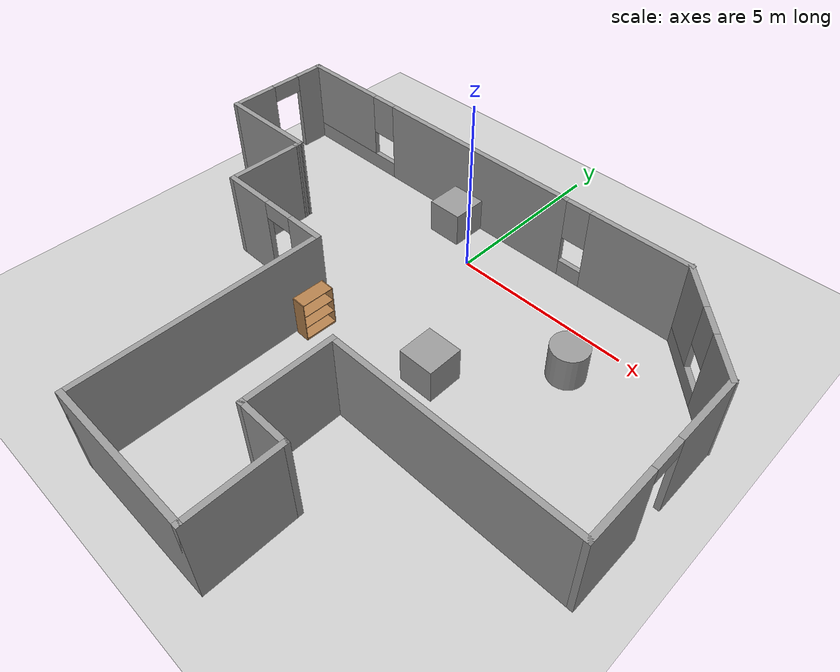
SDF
<sdf version="1.7">
 <world name="default">
  <light name="sun" type="directional">
   <pose>0 0 10 0 -0 0</pose>
   <diffuse>0.8 0.8 0.8 1</diffuse>
   <specular>0.2 0.2 0.2 1</specular>
   <attenuation>
    <range>1000</range>
    <constant>0.9</constant>
    <linear>0.01</linear>
    <quadratic>0.001</quadratic>
   </attenuation>
   <direction>-0.5 0.1 -0.9</direction>
   <spot><inner_angle>0</inner_angle><outer_angle>0</outer_angle><falloff>0</falloff></spot>
  </light>
  <model name="ground_plane">
   <static>1</static>
   <link name="link">
    <collision name="collision">
     <geometry><plane><normal>0 0 1</normal><size>100 100</size></plane></geometry>
     <surface><friction><ode><mu>100</mu><mu2>50</mu2></ode></friction></surface>
    </collision>
    <visual name="visual">
     <cast_shadows>0</cast_shadows>
     <geometry><plane><normal>0 0 1</normal><size>100 100</size></plane></geometry>
     <material>
      <script><uri>file://media/materials/scripts/gazebo.material</uri><name>Gazebo/Grey</name></script>
     </material>
    </visual>
   </link>
  </model>
  <gravity>0 0 -9.8</gravity>
  <magnetic_field>6e-06 2.3e-05 -4.2e-05</magnetic_field>
  <atmosphere type="adiabatic"/>
  <physics type="ode">
   <max_step_size>0.001</max_step_size>
   <real_time_factor>1</real_time_factor>
   <real_time_update_rate>1000</real_time_update_rate>
  </physics>
  <scene><ambient>0.4 0.4 0.4 1</ambient><background>0.7 0.7 0.7 1</background><shadows>1</shadows></scene>
  <audio><device>default</device></audio>
  <spherical_coordinates>
   <surface_model>EARTH_WGS84</surface_model>
   <latitude_deg>0</latitude_deg>
   <longitude_deg>0</longitude_deg>
   <elevation>0</elevation>
   <heading_deg>0</heading_deg>
  </spherical_coordinates>
  <model name="TestRoom">
   <pose>0.121129 -4.48506 0 0 -0 0</pose>
   <link name="Wall_0">
    <collision name="Wall_0_Collision">
     <geometry><box><size>2.25 0.15 2.5</size></box></geometry>
     <pose>0 0 1.25 0 -0 0</pose>
    </collision>
    <visual name="Wall_0_Visual">
     <pose>0 0 1.25 0 -0 0</pose>
     <geometry><box><size>2.25 0.15 2.5</size></box></geometry>
     <material>
      <script><uri>file://media/materials/scripts/gazebo.material</uri><name>Gazebo/Grey</name></script>
      <ambient>1 1 1 1</ambient>
     </material>
     <meta><layer>0</layer></meta>
    </visual>
    <pose>-4.93113 1.67506 0 0 -0 -1.5708</pose>
   </link>
   <link name="Wall_1">
    <pose>-3.25613 0.625063 0 0 -0 0</pose>
    <visual name="Wall_1_Visual_0">
     <pose>-1.00064 0 1.25 0 -0 0</pose>
     <geometry><box><size>1.49872 0.15 2.5</size></box></geometry>
     <material>
      <script><uri>file://media/materials/scripts/gazebo.material</uri><name>Gazebo/Grey</name></script>
      <ambient>1 1 1 1</ambient>
     </material>
     <meta><layer>0</layer></meta>
    </visual>
    <collision name="Wall_1_Collision_0">
     <geometry><box><size>1.49872 0.15 2.5</size></box></geometry>
     <pose>-1.00064 0 1.25 0 -0 0</pose>
    </collision>
    <visual name="Wall_1_Visual_1">
     <pose>1.19936 0 1.25 0 -0 0</pose>
     <geometry><box><size>1.10128 0.15 2.5</size></box></geometry>
     <material>
      <script><uri>file://media/materials/scripts/gazebo.material</uri><name>Gazebo/Grey</name></script>
      <ambient>1 1 1 1</ambient>
     </material>
     <meta><layer>0</layer></meta>
    </visual>
    <collision name="Wall_1_Collision_1">
     <geometry><box><size>1.10128 0.15 2.5</size></box></geometry>
     <pose>1.19936 0 1.25 0 -0 0</pose>
    </collision>
    <visual name="Wall_1_Visual_2">
     <pose>0.19872 0 2.25 0 -0 0</pose>
     <geometry><box><size>0.9 0.15 0.5</size></box></geometry>
     <material>
      <script><uri>file://media/materials/scripts/gazebo.material</uri><name>Gazebo/Grey</name></script>
      <ambient>1 1 1 1</ambient>
     </material>
     <meta><layer>0</layer></meta>
    </visual>
    <collision name="Wall_1_Collision_2">
     <geometry><box><size>0.9 0.15 0.5</size></box></geometry>
     <pose>0.19872 0 2.25 0 -0 0</pose>
    </collision>
   </link>
   <link name="Wall_10">
    <pose>3.60006 5.94387 0 0 -0 3.14159</pose>
    <visual name="Wall_10_Visual_0">
     <pose>-0.429582 0 1.25 0 -0 0</pose>
     <geometry><box><size>2.89084 0.15 2.5</size></box></geometry>
     <material>
      <script><uri>file://media/materials/scripts/gazebo.material</uri><name>Gazebo/Grey</name></script>
      <ambient>1 1 1 1</ambient>
     </material>
     <meta><layer>0</layer></meta>
    </visual>
    <collision name="Wall_10_Collision_0">
     <geometry><box><size>2.89084 0.15 2.5</size></box></geometry>
     <pose>-0.429582 0 1.25 0 -0 0</pose>
    </collision>
    <visual name="Wall_10_Visual_1">
     <pose>1.44542 0 0.25 0 -0 0</pose>
     <geometry><box><size>0.859163 0.15 0.5</size></box></geometry>
     <material>
      <script><uri>file://media/materials/scripts/gazebo.material</uri><name>Gazebo/Grey</name></script>
      <ambient>1 1 1 1</ambient>
     </material>
     <meta><layer>0</layer></meta>
    </visual>
    <collision name="Wall_10_Collision_1">
     <geometry><box><size>0.859163 0.15 0.5</size></box></geometry>
     <pose>1.44542 0 0.25 0 -0 0</pose>
    </collision>
    <visual name="Wall_10_Visual_2">
     <pose>1.84542 0 1.5 0 -0 0</pose>
     <geometry><box><size>0.059163 0.15 2</size></box></geometry>
     <material>
      <script><uri>file://media/materials/scripts/gazebo.material</uri><name>Gazebo/Grey</name></script>
      <ambient>1 1 1 1</ambient>
     </material>
     <meta><layer>0</layer></meta>
    </visual>
    <collision name="Wall_10_Collision_2">
     <geometry><box><size>0.059163 0.15 2</size></box></geometry>
     <pose>1.84542 0 1.5 0 -0 0</pose>
    </collision>
    <visual name="Wall_10_Visual_3">
     <pose>1.41584 0 1.9 0 -0 0</pose>
     <geometry><box><size>0.8 0.15 1.2</size></box></geometry>
     <material>
      <script><uri>file://media/materials/scripts/gazebo.material</uri><name>Gazebo/Grey</name></script>
      <ambient>1 1 1 1</ambient>
     </material>
     <meta><layer>0</layer></meta>
    </visual>
    <collision name="Wall_10_Collision_3">
     <geometry><box><size>0.8 0.15 1.2</size></box></geometry>
     <pose>1.41584 0 1.9 0 -0 0</pose>
    </collision>
   </link>
   <link name="Wall_11">
    <pose>-2.99994 5.94387 0 0 -0 3.14159</pose>
    <visual name="Wall_11_Visual_0">
     <pose>-1.7293 0 1.25 0 -0 0</pose>
     <geometry><box><size>6.29141 0.15 2.5</size></box></geometry>
     <material>
      <script><uri>file://media/materials/scripts/gazebo.material</uri><name>Gazebo/Grey</name></script>
      <ambient>1 1 1 1</ambient>
     </material>
     <meta><layer>0</layer></meta>
    </visual>
    <collision name="Wall_11_Collision_0">
     <geometry><box><size>6.29141 0.15 2.5</size></box></geometry>
     <pose>-1.7293 0 1.25 0 -0 0</pose>
    </collision>
    <visual name="Wall_11_Visual_1">
     <pose>3.1457 0 0.25 0 -0 0</pose>
     <geometry><box><size>3.45859 0.15 0.5</size></box></geometry>
     <material>
      <script><uri>file://media/materials/scripts/gazebo.material</uri><name>Gazebo/Grey</name></script>
      <ambient>1 1 1 1</ambient>
     </material>
     <meta><layer>0</layer></meta>
    </visual>
    <collision name="Wall_11_Collision_1">
     <geometry><box><size>3.45859 0.15 0.5</size></box></geometry>
     <pose>3.1457 0 0.25 0 -0 0</pose>
    </collision>
    <visual name="Wall_11_Visual_2">
     <pose>3.5457 0 1.5 0 -0 0</pose>
     <geometry><box><size>2.65859 0.15 2</size></box></geometry>
     <material>
      <script><uri>file://media/materials/scripts/gazebo.material</uri><name>Gazebo/Grey</name></script>
      <ambient>1 1 1 1</ambient>
     </material>
     <meta><layer>0</layer></meta>
    </visual>
    <collision name="Wall_11_Collision_2">
     <geometry><box><size>2.65859 0.15 2</size></box></geometry>
     <pose>3.5457 0 1.5 0 -0 0</pose>
    </collision>
    <visual name="Wall_11_Visual_3">
     <pose>1.81641 0 1.9 0 -0 0</pose>
     <geometry><box><size>0.8 0.15 1.2</size></box></geometry>
     <material>
      <script><uri>file://media/materials/scripts/gazebo.material</uri><name>Gazebo/Grey</name></script>
      <ambient>1 1 1 1</ambient>
     </material>
     <meta><layer>0</layer></meta>
    </visual>
    <collision name="Wall_11_Collision_3">
     <geometry><box><size>0.8 0.15 1.2</size></box></geometry>
     <pose>1.81641 0 1.9 0 -0 0</pose>
    </collision>
   </link>
   <link name="Wall_12">
    <pose>-7.79994 4.39387 0 0 -0 -1.5708</pose>
    <visual name="Wall_12_Visual_0">
     <pose>-1.15112 0 1.25 0 -0 0</pose>
     <geometry><box><size>0.947764 0.15 2.5</size></box></geometry>
     <material>
      <script><uri>file://media/materials/scripts/gazebo.material</uri><name>Gazebo/Grey</name></script>
      <ambient>1 1 1 1</ambient>
     </material>
     <meta><layer>0</layer></meta>
    </visual>
    <collision name="Wall_12_Collision_0">
     <geometry><box><size>0.947764 0.15 2.5</size></box></geometry>
     <pose>-1.15112 0 1.25 0 -0 0</pose>
    </collision>
    <visual name="Wall_12_Visual_1">
     <pose>0.923882 0 1.25 0 -0 0</pose>
     <geometry><box><size>1.40224 0.15 2.5</size></box></geometry>
     <material>
      <script><uri>file://media/materials/scripts/gazebo.material</uri><name>Gazebo/Grey</name></script>
      <ambient>1 1 1 1</ambient>
     </material>
     <meta><layer>0</layer></meta>
    </visual>
    <collision name="Wall_12_Collision_1">
     <geometry><box><size>1.40224 0.15 2.5</size></box></geometry>
     <pose>0.923882 0 1.25 0 -0 0</pose>
    </collision>
    <visual name="Wall_12_Visual_2">
     <pose>-0.227236 0 2.25 0 -0 0</pose>
     <geometry><box><size>0.9 0.15 0.5</size></box></geometry>
     <material>
      <script><uri>file://media/materials/scripts/gazebo.material</uri><name>Gazebo/Grey</name></script>
      <ambient>1 1 1 1</ambient>
     </material>
     <meta><layer>0</layer></meta>
    </visual>
    <collision name="Wall_12_Collision_2">
     <geometry><box><size>0.9 0.15 0.5</size></box></geometry>
     <pose>-0.227236 0 2.25 0 -0 0</pose>
    </collision>
   </link>
   <link name="Wall_13">
    <collision name="Wall_13_Collision">
     <geometry><box><size>3 0.15 2.5</size></box></geometry>
     <pose>0 0 1.25 0 -0 0</pose>
    </collision>
    <visual name="Wall_13_Visual">
     <pose>0 0 1.25 0 -0 0</pose>
     <geometry><box><size>3 0.15 2.5</size></box></geometry>
     <material>
      <script><uri>file://media/materials/scripts/gazebo.material</uri><name>Gazebo/Grey</name></script>
      <ambient>1 1 1 1</ambient>
     </material>
     <meta><layer>0</layer></meta>
    </visual>
    <pose>-6.37494 2.84387 0 0 -0 0</pose>
   </link>
   <link name="Wall_14">
    <collision name="Wall_14_Collision">
     <geometry><box><size>0.270287 0.15 2.5</size></box></geometry>
     <pose>0 0 1.25 0 -0 0</pose>
    </collision>
    <visual name="Wall_14_Visual">
     <pose>0 0 1.25 0 -0 0</pose>
     <geometry><box><size>0.270287 0.15 2.5</size></box></geometry>
     <material>
      <script><uri>file://media/materials/scripts/gazebo.material</uri><name>Gazebo/Grey</name></script>
      <ambient>1 1 1 1</ambient>
     </material>
     <meta><layer>0</layer></meta>
    </visual>
    <pose>-4.94053 2.78447 0 0 -0 -1.41379</pose>
   </link>
   <link name="Wall_2">
    <collision name="Wall_2_Collision">
     <geometry><box><size>6.75 0.15 2.5</size></box></geometry>
     <pose>0 0 1.25 0 -0 0</pose>
    </collision>
    <visual name="Wall_2_Visual">
     <pose>0 0 1.25 0 -0 0</pose>
     <geometry><box><size>6.75 0.15 2.5</size></box></geometry>
     <material>
      <script><uri>file://media/materials/scripts/gazebo.material</uri><name>Gazebo/Grey</name></script>
      <ambient>1 1 1 1</ambient>
     </material>
     <meta><layer>0</layer></meta>
    </visual>
    <pose>-1.58113 -2.67494 0 0 -0 -1.5708</pose>
   </link>
   <link name="Wall_3">
    <collision name="Wall_3_Collision">
     <geometry><box><size>4.25 0.15 2.5</size></box></geometry>
     <pose>0 0 1.25 0 -0 0</pose>
    </collision>
    <visual name="Wall_3_Visual">
     <pose>0 0 1.25 0 -0 0</pose>
     <geometry><box><size>4.25 0.15 2.5</size></box></geometry>
     <material>
      <script><uri>file://media/materials/scripts/gazebo.material</uri><name>Gazebo/Grey</name></script>
      <ambient>1 1 1 1</ambient>
     </material>
     <meta><layer>0</layer></meta>
    </visual>
    <pose>0.468871 -5.97494 0 0 -0 0</pose>
   </link>
   <link name="Wall_4">
    <collision name="Wall_4_Collision">
     <geometry><box><size>2.5 0.15 2.5</size></box></geometry>
     <pose>0 0 1.25 0 -0 0</pose>
    </collision>
    <visual name="Wall_4_Visual">
     <pose>0 0 1.25 0 -0 0</pose>
     <geometry><box><size>2.5 0.15 2.5</size></box></geometry>
     <material>
      <script><uri>file://media/materials/scripts/gazebo.material</uri><name>Gazebo/Grey</name></script>
      <ambient>1 1 1 1</ambient>
     </material>
     <meta><layer>0</layer></meta>
    </visual>
    <pose>2.51887 -4.79994 0 0 -0 1.5708</pose>
   </link>
   <link name="Wall_5">
    <collision name="Wall_5_Collision">
     <geometry><box><size>1.5 0.15 2.5</size></box></geometry>
     <pose>0 0 1.25 0 -0 0</pose>
    </collision>
    <visual name="Wall_5_Visual">
     <pose>0 0 1.25 0 -0 0</pose>
     <geometry><box><size>1.5 0.15 2.5</size></box></geometry>
     <material>
      <script><uri>file://media/materials/scripts/gazebo.material</uri><name>Gazebo/Grey</name></script>
      <ambient>1 1 1 1</ambient>
     </material>
     <meta><layer>0</layer></meta>
    </visual>
    <pose>1.84387 -3.62494 0 0 -0 3.14159</pose>
   </link>
   <link name="Wall_6">
    <collision name="Wall_6_Collision">
     <geometry><box><size>2.5 0.15 2.5</size></box></geometry>
     <pose>0 0 1.25 0 -0 0</pose>
    </collision>
    <visual name="Wall_6_Visual">
     <pose>0 0 1.25 0 -0 0</pose>
     <geometry><box><size>2.5 0.15 2.5</size></box></geometry>
     <material>
      <script><uri>file://media/materials/scripts/gazebo.material</uri><name>Gazebo/Grey</name></script>
      <ambient>1 1 1 1</ambient>
     </material>
     <meta><layer>0</layer></meta>
    </visual>
    <pose>1.16887 -2.44994 0 0 -0 1.5708</pose>
   </link>
   <link name="Wall_7">
    <collision name="Wall_7_Collision">
     <geometry><box><size>6.75 0.15 2.5</size></box></geometry>
     <pose>0 0 1.25 0 -0 0</pose>
    </collision>
    <visual name="Wall_7_Visual">
     <pose>0 0 1.25 0 -0 0</pose>
     <geometry><box><size>6.75 0.15 2.5</size></box></geometry>
     <material>
      <script><uri>file://media/materials/scripts/gazebo.material</uri><name>Gazebo/Grey</name></script>
      <ambient>1 1 1 1</ambient>
     </material>
     <meta><layer>0</layer></meta>
    </visual>
    <pose>4.46887 -1.27494 0 0 -0 0</pose>
   </link>
   <link name="Wall_8">
    <pose>7.76887 1.15006 0 0 -0 1.5708</pose>
    <visual name="Wall_8_Visual_0">
     <pose>-1.46324 0 1.25 0 -0 0</pose>
     <geometry><box><size>2.07353 0.15 2.5</size></box></geometry>
     <material>
      <script><uri>file://media/materials/scripts/gazebo.material</uri><name>Gazebo/Grey</name></script>
      <ambient>1 1 1 1</ambient>
     </material>
     <meta><layer>0</layer></meta>
    </visual>
    <collision name="Wall_8_Collision_0">
     <geometry><box><size>2.07353 0.15 2.5</size></box></geometry>
     <pose>-1.46324 0 1.25 0 -0 0</pose>
    </collision>
    <visual name="Wall_8_Visual_1">
     <pose>1.48676 0 1.25 0 -0 0</pose>
     <geometry><box><size>2.02648 0.15 2.5</size></box></geometry>
     <material>
      <script><uri>file://media/materials/scripts/gazebo.material</uri><name>Gazebo/Grey</name></script>
      <ambient>1 1 1 1</ambient>
     </material>
     <meta><layer>0</layer></meta>
    </visual>
    <collision name="Wall_8_Collision_1">
     <geometry><box><size>2.02648 0.15 2.5</size></box></geometry>
     <pose>1.48676 0 1.25 0 -0 0</pose>
    </collision>
    <visual name="Wall_8_Visual_2">
     <pose>0.023525 0 2.25 0 -0 0</pose>
     <geometry><box><size>0.9 0.15 0.5</size></box></geometry>
     <material>
      <script><uri>file://media/materials/scripts/gazebo.material</uri><name>Gazebo/Grey</name></script>
      <ambient>1 1 1 1</ambient>
     </material>
     <meta><layer>0</layer></meta>
    </visual>
    <collision name="Wall_8_Collision_2">
     <geometry><box><size>0.9 0.15 0.5</size></box></geometry>
     <pose>0.023525 0 2.25 0 -0 0</pose>
    </collision>
   </link>
   <link name="Wall_9">
    <pose>6.58447 4.75947 0 0 -0 2.35619</pose>
    <visual name="Wall_9_Visual_0">
     <pose>-1.08558 0 1.25 0 -0 0</pose>
     <geometry><box><size>1.32884 0.15 2.5</size></box></geometry>
     <material>
      <script><uri>file://media/materials/scripts/gazebo.material</uri><name>Gazebo/Grey</name></script>
      <ambient>1 1 1 1</ambient>
     </material>
     <meta><layer>0</layer></meta>
    </visual>
    <collision name="Wall_9_Collision_0">
     <geometry><box><size>1.32884 0.15 2.5</size></box></geometry>
     <pose>-1.08558 0 1.25 0 -0 0</pose>
    </collision>
    <visual name="Wall_9_Visual_1">
     <pose>0.664419 0 0.25 0 -0 0</pose>
     <geometry><box><size>2.17116 0.15 0.5</size></box></geometry>
     <material>
      <script><uri>file://media/materials/scripts/gazebo.material</uri><name>Gazebo/Grey</name></script>
      <ambient>1 1 1 1</ambient>
     </material>
     <meta><layer>0</layer></meta>
    </visual>
    <collision name="Wall_9_Collision_1">
     <geometry><box><size>2.17116 0.15 0.5</size></box></geometry>
     <pose>0.664419 0 0.25 0 -0 0</pose>
    </collision>
    <visual name="Wall_9_Visual_2">
     <pose>1.06442 0 1.5 0 -0 0</pose>
     <geometry><box><size>1.37116 0.15 2</size></box></geometry>
     <material>
      <script><uri>file://media/materials/scripts/gazebo.material</uri><name>Gazebo/Grey</name></script>
      <ambient>1 1 1 1</ambient>
     </material>
     <meta><layer>0</layer></meta>
    </visual>
    <collision name="Wall_9_Collision_2">
     <geometry><box><size>1.37116 0.15 2</size></box></geometry>
     <pose>1.06442 0 1.5 0 -0 0</pose>
    </collision>
    <visual name="Wall_9_Visual_3">
     <pose>-0.021163 0 1.9 0 -0 0</pose>
     <geometry><box><size>0.8 0.15 1.2</size></box></geometry>
     <material>
      <script><uri>file://media/materials/scripts/gazebo.material</uri><name>Gazebo/Grey</name></script>
      <ambient>1 1 1 1</ambient>
     </material>
     <meta><layer>0</layer></meta>
    </visual>
    <collision name="Wall_9_Collision_3">
     <geometry><box><size>0.8 0.15 1.2</size></box></geometry>
     <pose>-0.021163 0 1.9 0 -0 0</pose>
    </collision>
   </link>
   <static>1</static>
  </model>
  <model name="unit_box">
   <pose>-1.24461 0.883804 0.5 0 -0 1e-06</pose>
   <link name="link">
    <inertial>
     <mass>1</mass>
     <inertia>
      <ixx>0.166667</ixx>
      <ixy>0</ixy>
      <ixz>0</ixz>
      <iyy>0.166667</iyy>
      <iyz>0</iyz>
      <izz>0.166667</izz>
     </inertia>
    </inertial>
    <collision name="collision"><geometry><box><size>1 1 1</size></box></geometry></collision>
    <visual name="visual">
     <geometry><box><size>1 1 1</size></box></geometry>
     <material>
      <script><name>Gazebo/Grey</name><uri>file://media/materials/scripts/gazebo.material</uri></script>
     </material>
    </visual>
   </link>
  </model>
  <model name="unit_cylinder">
   <pose>4.32717 -1.26199 0.499998 3e-06 -4e-06 0</pose>
   <link name="link">
    <inertial>
     <mass>1</mass>
     <inertia><ixx>0.145833</ixx><ixy>0</ixy><ixz>0</ixz><iyy>0.145833</iyy><iyz>0</iyz><izz>0.125</izz></inertia>
    </inertial>
    <collision name="collision">
     <geometry><cylinder><radius>0.5</radius><length>1</length></cylinder></geometry>
    </collision>
    <visual name="visual">
     <geometry><cylinder><radius>0.5</radius><length>1</length></cylinder></geometry>
     <material>
      <script><name>Gazebo/Grey</name><uri>file://media/materials/scripts/gazebo.material</uri></script>
     </material>
    </visual>
   </link>
  </model>
  <model name="unit_box_0">
   <pose>2.08319 -3.62392 0.499995 -1e-05 -0 -0</pose>
   <link name="link">
    <inertial>
     <mass>1</mass>
     <inertia>
      <ixx>0.166667</ixx>
      <ixy>0</ixy>
      <ixz>0</ixz>
      <iyy>0.166667</iyy>
      <iyz>0</iyz>
      <izz>0.166667</izz>
     </inertia>
    </inertial>
    <collision name="collision"><geometry><box><size>1 1 1</size></box></geometry></collision>
    <visual name="visual">
     <geometry><box><size>1 1 1</size></box></geometry>
     <material>
      <script><name>Gazebo/Grey</name><uri>file://media/materials/scripts/gazebo.material</uri></script>
     </material>
    </visual>
   </link>
  </model>
  <model name="bookshelf">
   <static>1</static>
   <link name="link">
    <inertial><mass>1</mass></inertial>
    <collision name="back">
     <pose>0 0.005 0.6 0 -0 0</pose>
     <geometry><box><size>0.9 0.01 1.2</size></box></geometry>
    </collision>
    <visual name="visual1">
     <pose>0 0.005 0.6 0 -0 0</pose>
     <geometry><box><size>0.9 0.01 1.2</size></box></geometry>
     <material>
      <script><uri>file://media/materials/scripts/gazebo.material</uri><name>Gazebo/Wood</name></script>
     </material>
    </visual>
    <collision name="left_side">
     <pose>0.45 -0.195 0.6 0 -0 0</pose>
     <geometry><box><size>0.02 0.4 1.2</size></box></geometry>
    </collision>
    <visual name="visual2">
     <pose>0.45 -0.195 0.6 0 -0 0</pose>
     <geometry><box><size>0.02 0.4 1.2</size></box></geometry>
     <material>
      <script><uri>file://media/materials/scripts/gazebo.material</uri><name>Gazebo/Wood</name></script>
     </material>
    </visual>
    <collision name="right_side">
     <pose>-0.45 -0.195 0.6 0 -0 0</pose>
     <geometry><box><size>0.02 0.4 1.2</size></box></geometry>
    </collision>
    <visual name="visual3">
     <pose>-0.45 -0.195 0.6 0 -0 0</pose>
     <geometry><box><size>0.02 0.4 1.2</size></box></geometry>
     <material>
      <script><uri>file://media/materials/scripts/gazebo.material</uri><name>Gazebo/Wood</name></script>
     </material>
    </visual>
    <collision name="bottom">
     <pose>0 -0.195 0.03 0 -0 0</pose>
     <geometry><box><size>0.88 0.4 0.06</size></box></geometry>
    </collision>
    <visual name="visual4">
     <pose>0 -0.195 0.03 0 -0 0</pose>
     <geometry><box><size>0.88 0.4 0.06</size></box></geometry>
     <material>
      <script><uri>file://media/materials/scripts/gazebo.material</uri><name>Gazebo/Wood</name></script>
     </material>
    </visual>
    <collision name="top">
     <pose>0 -0.195 1.19 0 -0 0</pose>
     <geometry><box><size>0.88 0.4 0.02</size></box></geometry>
    </collision>
    <visual name="visual5">
     <pose>0 -0.195 1.19 0 -0 0</pose>
     <geometry><box><size>0.88 0.4 0.02</size></box></geometry>
     <material>
      <script><uri>file://media/materials/scripts/gazebo.material</uri><name>Gazebo/Wood</name></script>
     </material>
    </visual>
    <collision name="low_shelf">
     <pose>0 -0.195 0.43 0 -0 0</pose>
     <geometry><box><size>0.88 0.4 0.02</size></box></geometry>
    </collision>
    <visual name="visual6">
     <pose>0 -0.195 0.43 0 -0 0</pose>
     <geometry><box><size>0.88 0.4 0.02</size></box></geometry>
     <material>
      <script><uri>file://media/materials/scripts/gazebo.material</uri><name>Gazebo/Wood</name></script>
     </material>
    </visual>
    <collision name="high_shelf">
     <pose>0 -0.195 0.8 0 -0 0</pose>
     <geometry><box><size>0.88 0.4 0.02</size></box></geometry>
    </collision>
    <visual name="visual7">
     <pose>0 -0.195 0.8 0 -0 0</pose>
     <geometry><box><size>0.88 0.4 0.02</size></box></geometry>
     <material>
      <script><uri>file://media/materials/scripts/gazebo.material</uri><name>Gazebo/Wood</name></script>
     </material>
    </visual>
   </link>
   <pose>-1.32603 -4.41889 0 0 -0 1.54876</pose>
  </model>
 </world>
</sdf>
